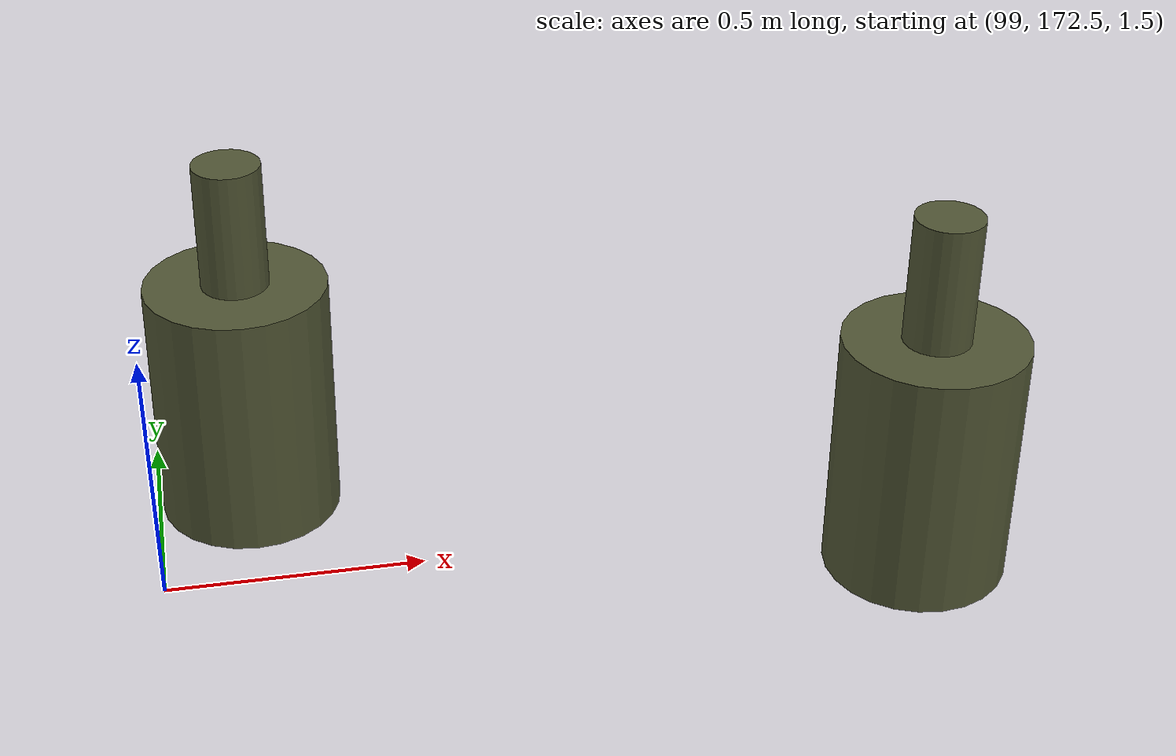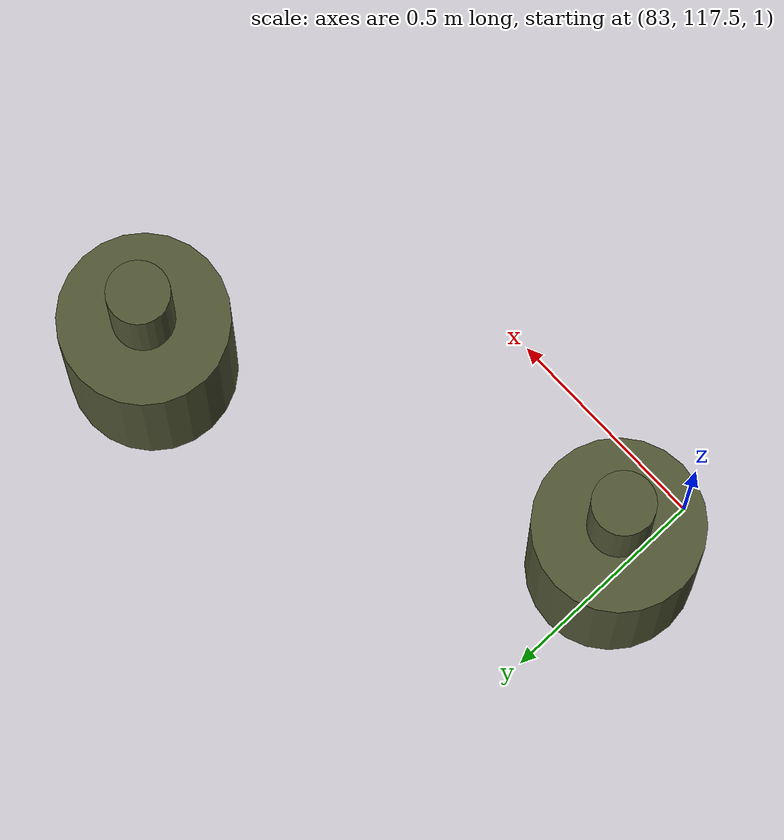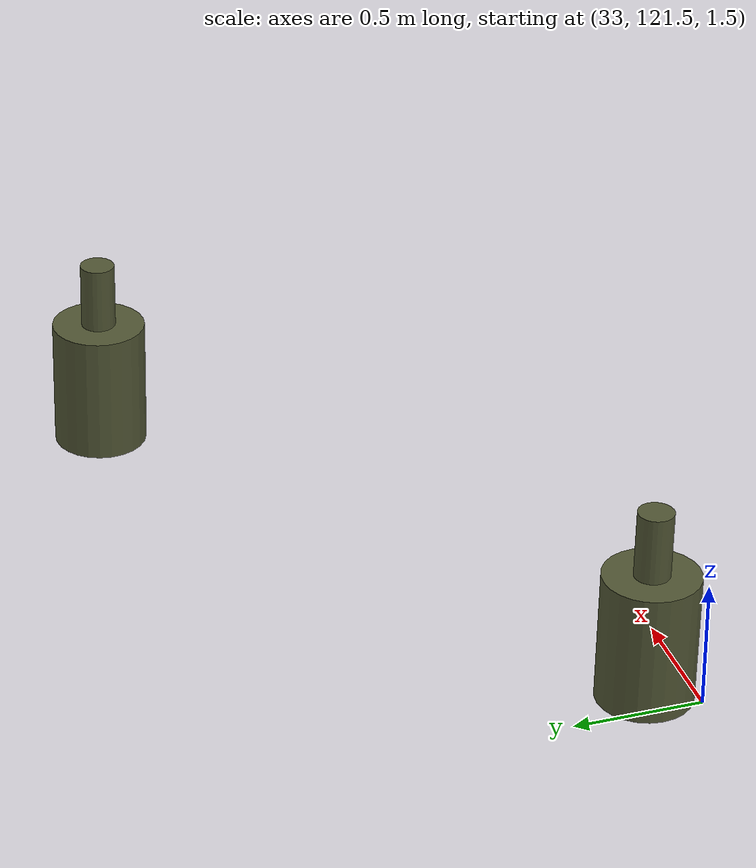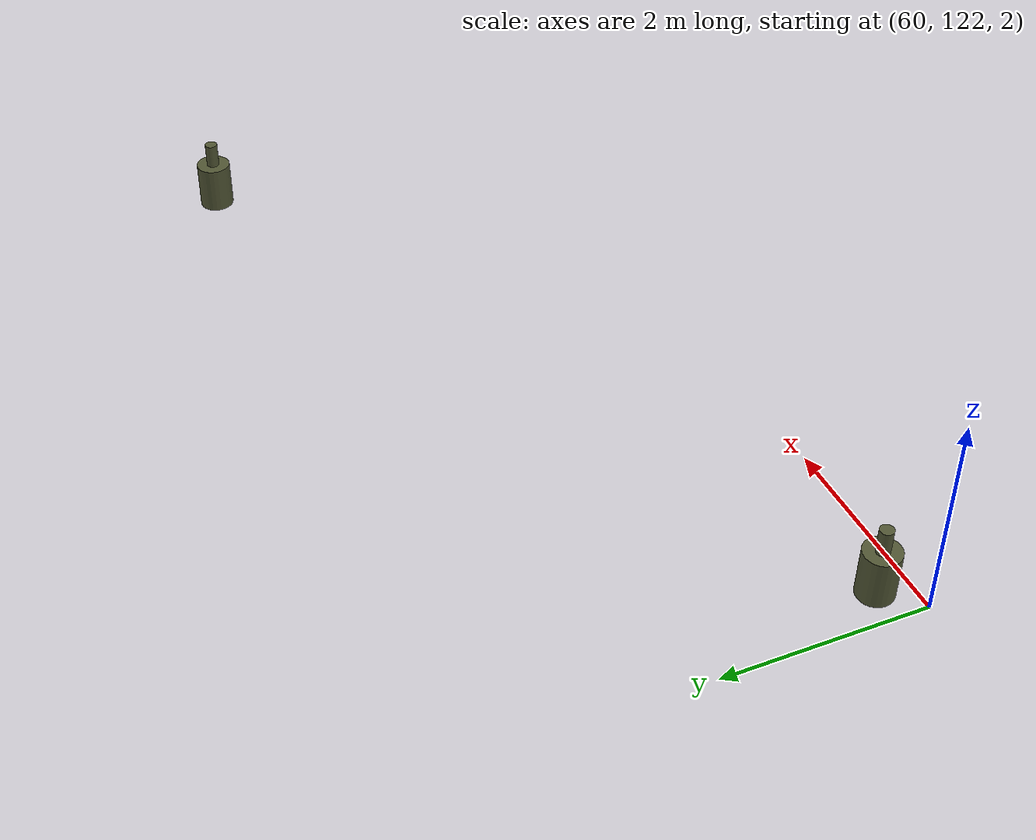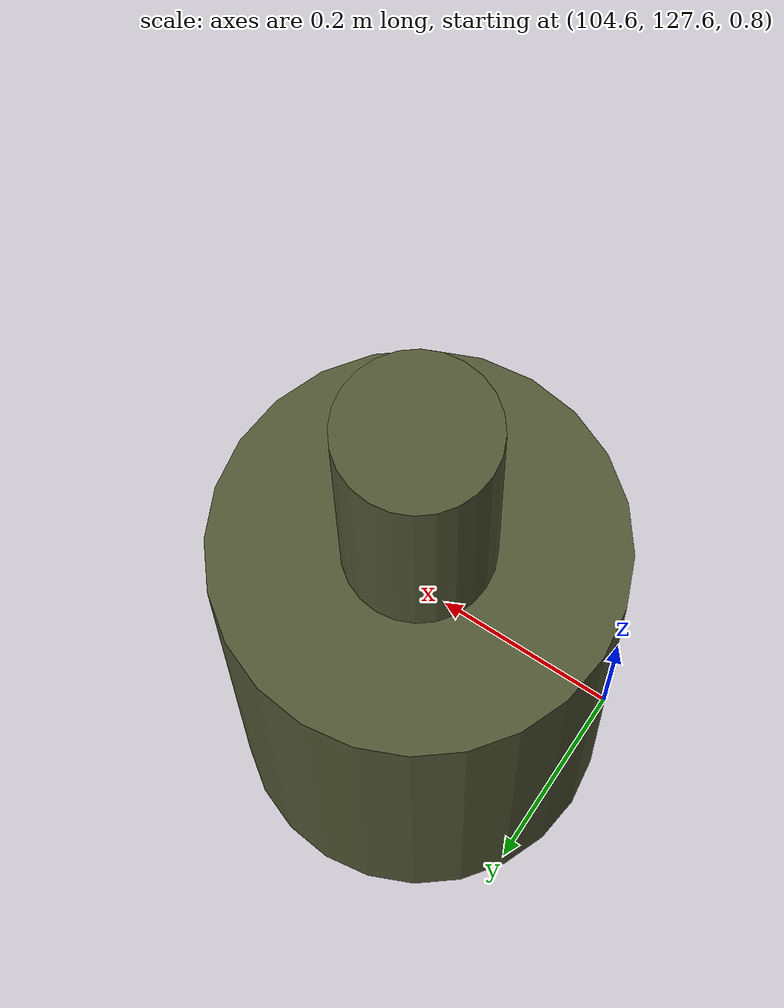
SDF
<sdf version="1.7">
 <world name="default">
  <light name="sun" type="directional">
   <pose>0 0 10 0 -0 0</pose>
   <diffuse>0.8 0.8 0.8 1</diffuse>
   <specular>0.2 0.2 0.2 1</specular>
   <attenuation>
    <range>1000</range>
    <constant>0.9</constant>
    <linear>0.01</linear>
    <quadratic>0.001</quadratic>
   </attenuation>
   <direction>-0.5 0.1 -0.9</direction>
   <spot><inner_angle>0</inner_angle><outer_angle>0</outer_angle><falloff>0</falloff></spot>
  </light>
  <gravity>0 0 -9.8</gravity>
  <magnetic_field>6e-06 2.3e-05 -4.2e-05</magnetic_field>
  <atmosphere type="adiabatic"/>
  <physics type="ode">
   <max_step_size>0.001</max_step_size>
   <real_time_factor>1</real_time_factor>
   <real_time_update_rate>1000</real_time_update_rate>
  </physics>
  <scene><ambient>0.4 0.4 0.4 1</ambient><background>0.7 0.7 0.7 1</background><shadows>0</shadows></scene>
  <spherical_coordinates>
   <surface_model>EARTH_WGS84</surface_model>
   <latitude_deg>46.339159</latitude_deg>
   <longitude_deg>3.433923</longitude_deg>
   <elevation>279.18</elevation>
   <heading_deg>180</heading_deg>
  </spherical_coordinates>
  <model name="obstacle_iso18497">
   <pose>141.678 138.918 0.440998 0.015616 0.019579 0.000147</pose>
   <static>1</static>
   <link name="link">
    <visual name="body">
     <pose>0 0 0.265 0 -0 0</pose>
     <geometry><cylinder><radius>0.19</radius><length>0.53</length></cylinder></geometry>
     <material><ambient>0.322 0.341 0.208 1</ambient><diffuse>0.322 0.341 0.208 1</diffuse></material>
    </visual>
    <visual name="head">
     <pose>0 0 0.665 0 -0 0</pose>
     <geometry><cylinder><radius>0.07</radius><length>0.27</length></cylinder></geometry>
     <material><ambient>0.322 0.341 0.208 1</ambient><diffuse>0.322 0.341 0.208 1</diffuse></material>
    </visual>
    <collision name="body_col">
     <pose>0 0 0.265 0 -0 0</pose>
     <geometry><cylinder><radius>0.19</radius><length>0.53</length></cylinder></geometry>
     <surface><contact><collide_without_contact>0</collide_without_contact></contact></surface>
    </collision>
    <collision name="head_col">
     <pose>0 0 0.665 0 -0 0</pose>
     <geometry><cylinder><radius>0.07</radius><length>0.27</length></cylinder></geometry>
     <surface><contact><collide_without_contact>0</collide_without_contact></contact></surface>
    </collision>
    <inertial>
     <mass>40</mass>
     <inertia><ixx>1</ixx><ixy>0</ixy><ixz>0</ixz><iyy>1</iyy><iyz>0</iyz><izz>1</izz></inertia>
    </inertial>
   </link>
  </model>
  <model name="obstacle_iso18497_clone">
   <pose>132.096 115.051 0.29308 0.012486 0.014415 4.3e-05</pose>
   <static>1</static>
   <link name="link">
    <visual name="body">
     <pose>0 0 0.265 0 -0 0</pose>
     <geometry><cylinder><radius>0.19</radius><length>0.53</length></cylinder></geometry>
     <material><ambient>0.322 0.341 0.208 1</ambient><diffuse>0.322 0.341 0.208 1</diffuse></material>
    </visual>
    <visual name="head">
     <pose>0 0 0.665 0 -0 0</pose>
     <geometry><cylinder><radius>0.07</radius><length>0.27</length></cylinder></geometry>
     <material><ambient>0.322 0.341 0.208 1</ambient><diffuse>0.322 0.341 0.208 1</diffuse></material>
    </visual>
    <collision name="body_col">
     <pose>0 0 0.265 0 -0 0</pose>
     <geometry><cylinder><radius>0.19</radius><length>0.53</length></cylinder></geometry>
     <surface><contact><collide_without_contact>0</collide_without_contact></contact></surface>
    </collision>
    <collision name="head_col">
     <pose>0 0 0.665 0 -0 0</pose>
     <geometry><cylinder><radius>0.07</radius><length>0.27</length></cylinder></geometry>
     <surface><contact><collide_without_contact>0</collide_without_contact></contact></surface>
    </collision>
    <inertial>
     <mass>40</mass>
     <inertia><ixx>1</ixx><ixy>0</ixy><ixz>0</ixz><iyy>1</iyy><iyz>0</iyz><izz>1</izz></inertia>
    </inertial>
   </link>
  </model>
  <model name="obstacle_iso18497_clone_clone">
   <pose>115.522 108.351 0.464691 0.0331 -0.034379 -0.001139</pose>
   <static>1</static>
   <link name="link">
    <visual name="body">
     <pose>0 0 0.265 0 -0 0</pose>
     <geometry><cylinder><radius>0.19</radius><length>0.53</length></cylinder></geometry>
     <material><ambient>0.322 0.341 0.208 1</ambient><diffuse>0.322 0.341 0.208 1</diffuse></material>
    </visual>
    <visual name="head">
     <pose>0 0 0.665 0 -0 0</pose>
     <geometry><cylinder><radius>0.07</radius><length>0.27</length></cylinder></geometry>
     <material><ambient>0.322 0.341 0.208 1</ambient><diffuse>0.322 0.341 0.208 1</diffuse></material>
    </visual>
    <collision name="body_col">
     <pose>0 0 0.265 0 -0 0</pose>
     <geometry><cylinder><radius>0.19</radius><length>0.53</length></cylinder></geometry>
     <surface><contact><collide_without_contact>0</collide_without_contact></contact></surface>
    </collision>
    <collision name="head_col">
     <pose>0 0 0.665 0 -0 0</pose>
     <geometry><cylinder><radius>0.07</radius><length>0.27</length></cylinder></geometry>
     <surface><contact><collide_without_contact>0</collide_without_contact></contact></surface>
    </collision>
    <inertial>
     <mass>40</mass>
     <inertia><ixx>1</ixx><ixy>0</ixy><ixz>0</ixz><iyy>1</iyy><iyz>0</iyz><izz>1</izz></inertia>
    </inertial>
   </link>
  </model>
  <model name="obstacle_iso18497_clone_clone_clone">
   <pose>104.764 127.703 0.746874 0.007135 0.010699 0.006123</pose>
   <static>1</static>
   <link name="link">
    <visual name="body">
     <pose>0 0 0.265 0 -0 0</pose>
     <geometry><cylinder><radius>0.19</radius><length>0.53</length></cylinder></geometry>
     <material><ambient>0.322 0.341 0.208 1</ambient><diffuse>0.322 0.341 0.208 1</diffuse></material>
    </visual>
    <visual name="head">
     <pose>0 0 0.665 0 -0 0</pose>
     <geometry><cylinder><radius>0.07</radius><length>0.27</length></cylinder></geometry>
     <material><ambient>0.322 0.341 0.208 1</ambient><diffuse>0.322 0.341 0.208 1</diffuse></material>
    </visual>
    <collision name="body_col">
     <pose>0 0 0.265 0 -0 0</pose>
     <geometry><cylinder><radius>0.19</radius><length>0.53</length></cylinder></geometry>
     <surface><contact><collide_without_contact>0</collide_without_contact></contact></surface>
    </collision>
    <collision name="head_col">
     <pose>0 0 0.665 0 -0 0</pose>
     <geometry><cylinder><radius>0.07</radius><length>0.27</length></cylinder></geometry>
     <surface><contact><collide_without_contact>0</collide_without_contact></contact></surface>
    </collision>
    <inertial>
     <mass>40</mass>
     <inertia><ixx>1</ixx><ixy>0</ixy><ixz>0</ixz><iyy>1</iyy><iyz>0</iyz><izz>1</izz></inertia>
    </inertial>
   </link>
  </model>
  <model name="obstacle_iso18497_clone_clone_clone_clone">
   <pose>84.0593 118.122 0.901749 0.007101 0.010721 0.006147</pose>
   <static>1</static>
   <link name="link">
    <visual name="body">
     <pose>0 0 0.265 0 -0 0</pose>
     <geometry><cylinder><radius>0.19</radius><length>0.53</length></cylinder></geometry>
     <material><ambient>0.322 0.341 0.208 1</ambient><diffuse>0.322 0.341 0.208 1</diffuse></material>
    </visual>
    <visual name="head">
     <pose>0 0 0.665 0 -0 0</pose>
     <geometry><cylinder><radius>0.07</radius><length>0.27</length></cylinder></geometry>
     <material><ambient>0.322 0.341 0.208 1</ambient><diffuse>0.322 0.341 0.208 1</diffuse></material>
    </visual>
    <collision name="body_col">
     <pose>0 0 0.265 0 -0 0</pose>
     <geometry><cylinder><radius>0.19</radius><length>0.53</length></cylinder></geometry>
     <surface><contact><collide_without_contact>0</collide_without_contact></contact></surface>
    </collision>
    <collision name="head_col">
     <pose>0 0 0.665 0 -0 0</pose>
     <geometry><cylinder><radius>0.07</radius><length>0.27</length></cylinder></geometry>
     <surface><contact><collide_without_contact>0</collide_without_contact></contact></surface>
    </collision>
    <inertial>
     <mass>40</mass>
     <inertia><ixx>1</ixx><ixy>0</ixy><ixz>0</ixz><iyy>1</iyy><iyz>0</iyz><izz>1</izz></inertia>
    </inertial>
   </link>
  </model>
  <model name="obstacle_iso18497_clone_clone_clone_clone_clone">
   <pose>83.0297 117.694 0.909788 0.007103 0.010721 0.006142</pose>
   <static>1</static>
   <link name="link">
    <visual name="body">
     <pose>0 0 0.265 0 -0 0</pose>
     <geometry><cylinder><radius>0.19</radius><length>0.53</length></cylinder></geometry>
     <material><ambient>0.322 0.341 0.208 1</ambient><diffuse>0.322 0.341 0.208 1</diffuse></material>
    </visual>
    <visual name="head">
     <pose>0 0 0.665 0 -0 0</pose>
     <geometry><cylinder><radius>0.07</radius><length>0.27</length></cylinder></geometry>
     <material><ambient>0.322 0.341 0.208 1</ambient><diffuse>0.322 0.341 0.208 1</diffuse></material>
    </visual>
    <collision name="body_col">
     <pose>0 0 0.265 0 -0 0</pose>
     <geometry><cylinder><radius>0.19</radius><length>0.53</length></cylinder></geometry>
     <surface><contact><collide_without_contact>0</collide_without_contact></contact></surface>
    </collision>
    <collision name="head_col">
     <pose>0 0 0.665 0 -0 0</pose>
     <geometry><cylinder><radius>0.07</radius><length>0.27</length></cylinder></geometry>
     <surface><contact><collide_without_contact>0</collide_without_contact></contact></surface>
    </collision>
    <inertial>
     <mass>40</mass>
     <inertia><ixx>1</ixx><ixy>0</ixy><ixz>0</ixz><iyy>1</iyy><iyz>0</iyz><izz>1</izz></inertia>
    </inertial>
   </link>
  </model>
  <model name="obstacle_iso18497_clone_clone_clone_clone_clone_clone">
   <pose>69.5579 125.524 1.10976 0.007129 0.010678 0.006131</pose>
   <static>1</static>
   <link name="link">
    <visual name="body">
     <pose>0 0 0.265 0 -0 0</pose>
     <geometry><cylinder><radius>0.19</radius><length>0.53</length></cylinder></geometry>
     <material><ambient>0.322 0.341 0.208 1</ambient><diffuse>0.322 0.341 0.208 1</diffuse></material>
    </visual>
    <visual name="head">
     <pose>0 0 0.665 0 -0 0</pose>
     <geometry><cylinder><radius>0.07</radius><length>0.27</length></cylinder></geometry>
     <material><ambient>0.322 0.341 0.208 1</ambient><diffuse>0.322 0.341 0.208 1</diffuse></material>
    </visual>
    <collision name="body_col">
     <pose>0 0 0.265 0 -0 0</pose>
     <geometry><cylinder><radius>0.19</radius><length>0.53</length></cylinder></geometry>
     <surface><contact><collide_without_contact>0</collide_without_contact></contact></surface>
    </collision>
    <collision name="head_col">
     <pose>0 0 0.665 0 -0 0</pose>
     <geometry><cylinder><radius>0.07</radius><length>0.27</length></cylinder></geometry>
     <surface><contact><collide_without_contact>0</collide_without_contact></contact></surface>
    </collision>
    <inertial>
     <mass>40</mass>
     <inertia><ixx>1</ixx><ixy>0</ixy><ixz>0</ixz><iyy>1</iyy><iyz>0</iyz><izz>1</izz></inertia>
    </inertial>
   </link>
  </model>
  <model name="obstacle_iso18497_clone_clone_clone_clone_clone_clone_clone">
   <pose>99.3573 156.917 1.1427 0.011588 0.009285 0.006116</pose>
   <static>1</static>
   <link name="link">
    <visual name="body">
     <pose>0 0 0.265 0 -0 0</pose>
     <geometry><cylinder><radius>0.19</radius><length>0.53</length></cylinder></geometry>
     <material><ambient>0.322 0.341 0.208 1</ambient><diffuse>0.322 0.341 0.208 1</diffuse></material>
    </visual>
    <visual name="head">
     <pose>0 0 0.665 0 -0 0</pose>
     <geometry><cylinder><radius>0.07</radius><length>0.27</length></cylinder></geometry>
     <material><ambient>0.322 0.341 0.208 1</ambient><diffuse>0.322 0.341 0.208 1</diffuse></material>
    </visual>
    <collision name="body_col">
     <pose>0 0 0.265 0 -0 0</pose>
     <geometry><cylinder><radius>0.19</radius><length>0.53</length></cylinder></geometry>
     <surface><contact><collide_without_contact>0</collide_without_contact></contact></surface>
    </collision>
    <collision name="head_col">
     <pose>0 0 0.665 0 -0 0</pose>
     <geometry><cylinder><radius>0.07</radius><length>0.27</length></cylinder></geometry>
     <surface><contact><collide_without_contact>0</collide_without_contact></contact></surface>
    </collision>
    <inertial>
     <mass>40</mass>
     <inertia><ixx>1</ixx><ixy>0</ixy><ixz>0</ixz><iyy>1</iyy><iyz>0</iyz><izz>1</izz></inertia>
    </inertial>
   </link>
  </model>
  <model name="obstacle_iso18497_clone_clone_clone_clone_clone_clone_clone_clone">
   <pose>99.1867 173.042 1.32997 0.011565 0.009305 0.006116</pose>
   <static>1</static>
   <link name="link">
    <visual name="body">
     <pose>0 0 0.265 0 -0 0</pose>
     <geometry><cylinder><radius>0.19</radius><length>0.53</length></cylinder></geometry>
     <material><ambient>0.322 0.341 0.208 1</ambient><diffuse>0.322 0.341 0.208 1</diffuse></material>
    </visual>
    <visual name="head">
     <pose>0 0 0.665 0 -0 0</pose>
     <geometry><cylinder><radius>0.07</radius><length>0.27</length></cylinder></geometry>
     <material><ambient>0.322 0.341 0.208 1</ambient><diffuse>0.322 0.341 0.208 1</diffuse></material>
    </visual>
    <collision name="body_col">
     <pose>0 0 0.265 0 -0 0</pose>
     <geometry><cylinder><radius>0.19</radius><length>0.53</length></cylinder></geometry>
     <surface><contact><collide_without_contact>0</collide_without_contact></contact></surface>
    </collision>
    <collision name="head_col">
     <pose>0 0 0.665 0 -0 0</pose>
     <geometry><cylinder><radius>0.07</radius><length>0.27</length></cylinder></geometry>
     <surface><contact><collide_without_contact>0</collide_without_contact></contact></surface>
    </collision>
    <inertial>
     <mass>40</mass>
     <inertia><ixx>1</ixx><ixy>0</ixy><ixz>0</ixz><iyy>1</iyy><iyz>0</iyz><izz>1</izz></inertia>
    </inertial>
   </link>
  </model>
  <model name="obstacle_iso18497_clone_clone_clone_clone_clone_clone_clone_clone_0">
   <pose>100.532 172.581 1.31206 0.011587 0.009278 0.006116</pose>
   <static>1</static>
   <link name="link">
    <visual name="body">
     <pose>0 0 0.265 0 -0 0</pose>
     <geometry><cylinder><radius>0.19</radius><length>0.53</length></cylinder></geometry>
     <material><ambient>0.322 0.341 0.208 1</ambient><diffuse>0.322 0.341 0.208 1</diffuse></material>
    </visual>
    <visual name="head">
     <pose>0 0 0.665 0 -0 0</pose>
     <geometry><cylinder><radius>0.07</radius><length>0.27</length></cylinder></geometry>
     <material><ambient>0.322 0.341 0.208 1</ambient><diffuse>0.322 0.341 0.208 1</diffuse></material>
    </visual>
    <collision name="body_col">
     <pose>0 0 0.265 0 -0 0</pose>
     <geometry><cylinder><radius>0.19</radius><length>0.53</length></cylinder></geometry>
     <surface><contact><collide_without_contact>0</collide_without_contact></contact></surface>
    </collision>
    <collision name="head_col">
     <pose>0 0 0.665 0 -0 0</pose>
     <geometry><cylinder><radius>0.07</radius><length>0.27</length></cylinder></geometry>
     <surface><contact><collide_without_contact>0</collide_without_contact></contact></surface>
    </collision>
    <inertial>
     <mass>40</mass>
     <inertia><ixx>1</ixx><ixy>0</ixy><ixz>0</ixz><iyy>1</iyy><iyz>0</iyz><izz>1</izz></inertia>
    </inertial>
   </link>
  </model>
  <model name="obstacle_iso18497_clone_clone_clone_clone_clone_clone_clone_clone_clone">
   <pose>77.367 180.707 1.62267 0.011567 0.009305 0.006119</pose>
   <static>1</static>
   <link name="link">
    <visual name="body">
     <pose>0 0 0.265 0 -0 0</pose>
     <geometry><cylinder><radius>0.19</radius><length>0.53</length></cylinder></geometry>
     <material><ambient>0.322 0.341 0.208 1</ambient><diffuse>0.322 0.341 0.208 1</diffuse></material>
    </visual>
    <visual name="head">
     <pose>0 0 0.665 0 -0 0</pose>
     <geometry><cylinder><radius>0.07</radius><length>0.27</length></cylinder></geometry>
     <material><ambient>0.322 0.341 0.208 1</ambient><diffuse>0.322 0.341 0.208 1</diffuse></material>
    </visual>
    <collision name="body_col">
     <pose>0 0 0.265 0 -0 0</pose>
     <geometry><cylinder><radius>0.19</radius><length>0.53</length></cylinder></geometry>
     <surface><contact><collide_without_contact>0</collide_without_contact></contact></surface>
    </collision>
    <collision name="head_col">
     <pose>0 0 0.665 0 -0 0</pose>
     <geometry><cylinder><radius>0.07</radius><length>0.27</length></cylinder></geometry>
     <surface><contact><collide_without_contact>0</collide_without_contact></contact></surface>
    </collision>
    <inertial>
     <mass>40</mass>
     <inertia><ixx>1</ixx><ixy>0</ixy><ixz>0</ixz><iyy>1</iyy><iyz>0</iyz><izz>1</izz></inertia>
    </inertial>
   </link>
  </model>
  <model name="obstacle_iso18497_clone_clone_clone_clone_clone_clone_clone_0">
   <pose>60.8815 121.85 1.25389 -0.001075 -0.010635 0.005575</pose>
   <static>1</static>
   <link name="link">
    <visual name="body">
     <pose>0 0 0.265 0 -0 0</pose>
     <geometry><cylinder><radius>0.19</radius><length>0.53</length></cylinder></geometry>
     <material><ambient>0.322 0.341 0.208 1</ambient><diffuse>0.322 0.341 0.208 1</diffuse></material>
    </visual>
    <visual name="head">
     <pose>0 0 0.665 0 -0 0</pose>
     <geometry><cylinder><radius>0.07</radius><length>0.27</length></cylinder></geometry>
     <material><ambient>0.322 0.341 0.208 1</ambient><diffuse>0.322 0.341 0.208 1</diffuse></material>
    </visual>
    <collision name="body_col">
     <pose>0 0 0.265 0 -0 0</pose>
     <geometry><cylinder><radius>0.19</radius><length>0.53</length></cylinder></geometry>
     <surface><contact><collide_without_contact>0</collide_without_contact></contact></surface>
    </collision>
    <collision name="head_col">
     <pose>0 0 0.665 0 -0 0</pose>
     <geometry><cylinder><radius>0.07</radius><length>0.27</length></cylinder></geometry>
     <surface><contact><collide_without_contact>0</collide_without_contact></contact></surface>
    </collision>
    <inertial>
     <mass>40</mass>
     <inertia><ixx>1</ixx><ixy>0</ixy><ixz>0</ixz><iyy>1</iyy><iyz>0</iyz><izz>1</izz></inertia>
    </inertial>
   </link>
  </model>
  <model name="obstacle_iso18497_clone_clone_clone_clone_clone_clone_clone_0_clone">
   <pose>35.8184 123.048 1.30026 0.021935 0.01268 0.005578</pose>
   <static>1</static>
   <link name="link">
    <visual name="body">
     <pose>0 0 0.265 0 -0 0</pose>
     <geometry><cylinder><radius>0.19</radius><length>0.53</length></cylinder></geometry>
     <material><ambient>0.322 0.341 0.208 1</ambient><diffuse>0.322 0.341 0.208 1</diffuse></material>
    </visual>
    <visual name="head">
     <pose>0 0 0.665 0 -0 0</pose>
     <geometry><cylinder><radius>0.07</radius><length>0.27</length></cylinder></geometry>
     <material><ambient>0.322 0.341 0.208 1</ambient><diffuse>0.322 0.341 0.208 1</diffuse></material>
    </visual>
    <collision name="body_col">
     <pose>0 0 0.265 0 -0 0</pose>
     <geometry><cylinder><radius>0.19</radius><length>0.53</length></cylinder></geometry>
     <surface><contact><collide_without_contact>0</collide_without_contact></contact></surface>
    </collision>
    <collision name="head_col">
     <pose>0 0 0.665 0 -0 0</pose>
     <geometry><cylinder><radius>0.07</radius><length>0.27</length></cylinder></geometry>
     <surface><contact><collide_without_contact>0</collide_without_contact></contact></surface>
    </collision>
    <inertial>
     <mass>40</mass>
     <inertia><ixx>1</ixx><ixy>0</ixy><ixz>0</ixz><iyy>1</iyy><iyz>0</iyz><izz>1</izz></inertia>
    </inertial>
   </link>
  </model>
  <model name="obstacle_iso18497_clone_clone_clone_clone_clone_clone_clone_0_clone_0">
   <pose>33.3718 121.573 1.29935 0.021934 0.012677 0.005585</pose>
   <static>1</static>
   <link name="link">
    <visual name="body">
     <pose>0 0 0.265 0 -0 0</pose>
     <geometry><cylinder><radius>0.19</radius><length>0.53</length></cylinder></geometry>
     <material><ambient>0.322 0.341 0.208 1</ambient><diffuse>0.322 0.341 0.208 1</diffuse></material>
    </visual>
    <visual name="head">
     <pose>0 0 0.665 0 -0 0</pose>
     <geometry><cylinder><radius>0.07</radius><length>0.27</length></cylinder></geometry>
     <material><ambient>0.322 0.341 0.208 1</ambient><diffuse>0.322 0.341 0.208 1</diffuse></material>
    </visual>
    <collision name="body_col">
     <pose>0 0 0.265 0 -0 0</pose>
     <geometry><cylinder><radius>0.19</radius><length>0.53</length></cylinder></geometry>
     <surface><contact><collide_without_contact>0</collide_without_contact></contact></surface>
    </collision>
    <collision name="head_col">
     <pose>0 0 0.665 0 -0 0</pose>
     <geometry><cylinder><radius>0.07</radius><length>0.27</length></cylinder></geometry>
     <surface><contact><collide_without_contact>0</collide_without_contact></contact></surface>
    </collision>
    <inertial>
     <mass>40</mass>
     <inertia><ixx>1</ixx><ixy>0</ixy><ixz>0</ixz><iyy>1</iyy><iyz>0</iyz><izz>1</izz></inertia>
    </inertial>
   </link>
  </model>
 </world>
</sdf>
